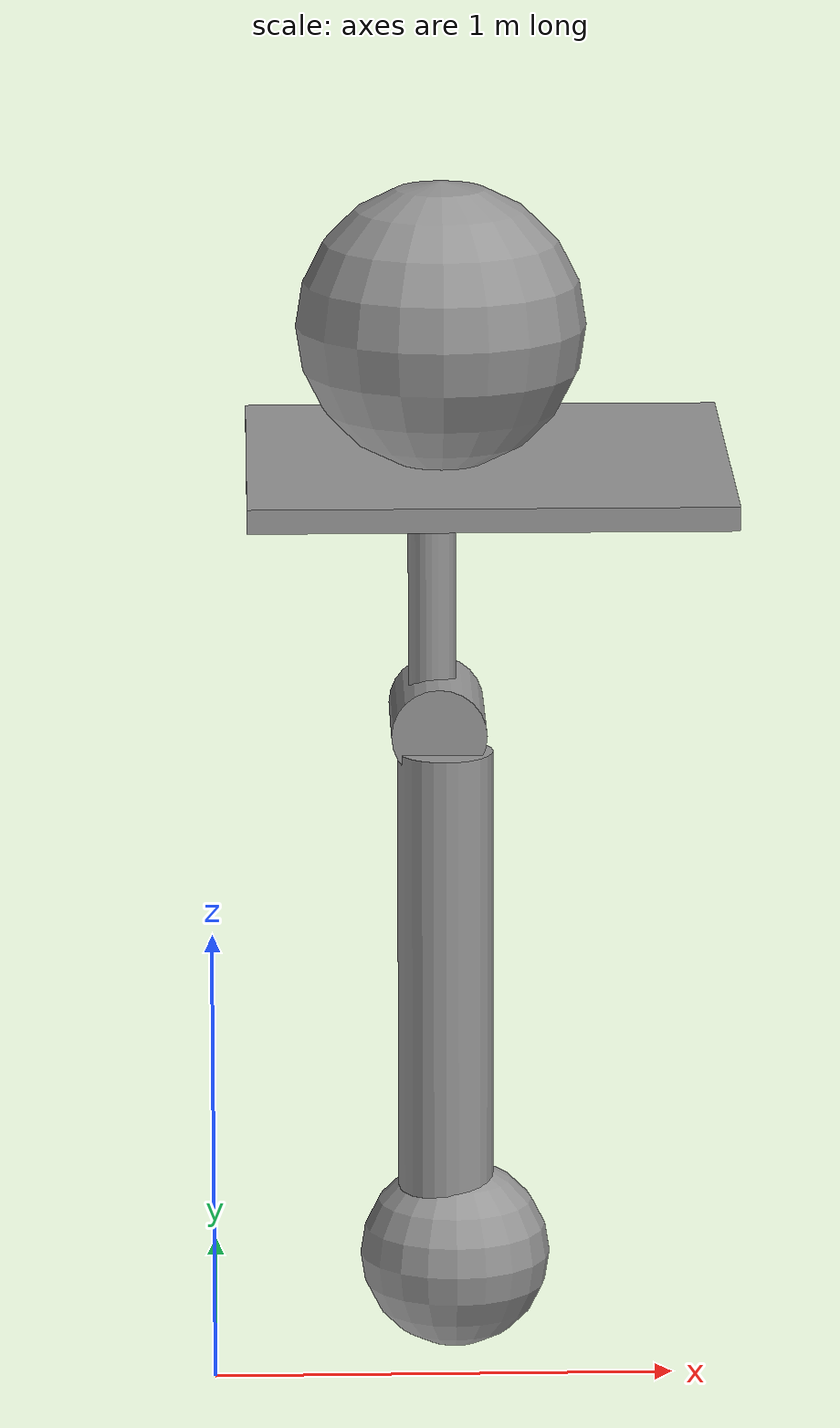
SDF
<?xml version='1.0'?>
<sdf version='1.6'>
  <model name='ralo'>
    <link name='link_1'>
      <pose frame=''>0.490479 -0.550262 1.05 0 -0 0</pose>
      <inertial>
        <mass>1</mass>
        <inertia>
          <ixx>0.145833</ixx>
          <ixy>0</ixy>
          <ixz>0</ixz>
          <iyy>0.145833</iyy>
          <iyz>0</iyz>
          <izz>0.125</izz>
        </inertia>
        <pose frame=''>0 0 0 0 -0 0</pose>
      </inertial>
      <gravity>1</gravity>
      <self_collide>0</self_collide>
      <kinematic>0</kinematic>
      <visual name='visual'>
        <pose frame=''>0 0 0 0 -0 0</pose>
        <geometry>
          <cylinder>
            <radius>0.1</radius>
            <length>1</length>
          </cylinder>
        </geometry>
        <material>
          <lighting>1</lighting>
          <script>
            <uri>file://media/materials/scripts/gazebo.material</uri>
            <name>Gazebo/Grey</name>
          </script>
          <ambient>0.3 0.3 0.3 1</ambient>
          <diffuse>0.7 0.7 0.7 1</diffuse>
          <specular>0.01 0.01 0.01 1</specular>
          <emissive>0 0 0 1</emissive>
          <shader type='vertex'>
            <normal_map>__default__</normal_map>
          </shader>
        </material>
        <transparency>0</transparency>
        <cast_shadows>1</cast_shadows>
      </visual>
      <collision name='collision'>
        <laser_retro>0</laser_retro>
        <max_contacts>10</max_contacts>
        <pose frame=''>0 0 0 0 -0 0</pose>
        <geometry>
          <cylinder>
            <radius>0.1</radius>
            <length>1</length>
          </cylinder>
        </geometry>
        <surface>
          <friction>
            <ode>
              <mu>1</mu>
              <mu2>1</mu2>
              <fdir1>0 0 0</fdir1>
              <slip1>0</slip1>
              <slip2>0</slip2>
            </ode>
            <torsional>
              <coefficient>1</coefficient>
              <patch_radius>0</patch_radius>
              <surface_radius>0</surface_radius>
              <use_patch_radius>1</use_patch_radius>
              <ode>
                <slip>0</slip>
              </ode>
            </torsional>
          </friction>
          <bounce>
            <restitution_coefficient>0</restitution_coefficient>
            <threshold>1e+06</threshold>
          </bounce>
          <contact>
            <collide_without_contact>0</collide_without_contact>
            <collide_without_contact_bitmask>1</collide_without_contact_bitmask>
            <collide_bitmask>1</collide_bitmask>
            <ode>
              <soft_cfm>0</soft_cfm>
              <soft_erp>0.2</soft_erp>
              <kp>1e+13</kp>
              <kd>1</kd>
              <max_vel>0.01</max_vel>
              <min_depth>0</min_depth>
            </ode>
            <bullet>
              <split_impulse>1</split_impulse>
              <split_impulse_penetration_threshold>-0.01</split_impulse_penetration_threshold>
              <soft_cfm>0</soft_cfm>
              <soft_erp>0.2</soft_erp>
              <kp>1e+13</kp>
              <kd>1</kd>
            </bullet>
          </contact>
        </surface>
      </collision>
    </link>
    <link name='link_1_clone'>
      <pose frame=''>0.465476 -0.443144 1.90809 0 -0 0</pose>
      <inertial>
        <mass>1</mass>
        <inertia>
          <ixx>0.145833</ixx>
          <ixy>0</ixy>
          <ixz>0</ixz>
          <iyy>0.145833</iyy>
          <iyz>0</iyz>
          <izz>0.125</izz>
        </inertia>
        <pose frame=''>0 0 0 0 -0 0</pose>
      </inertial>
      <self_collide>0</self_collide>
      <kinematic>0</kinematic>
      <gravity>1</gravity>
      <visual name='visual'>
        <pose frame=''>0 0 0 0 -0 0</pose>
        <geometry>
          <cylinder>
            <radius>0.05</radius>
            <length>0.5</length>
          </cylinder>
        </geometry>
        <material>
          <lighting>1</lighting>
          <script>
            <uri>file://media/materials/scripts/gazebo.material</uri>
            <name>Gazebo/Grey</name>
          </script>
          <ambient>0.3 0.3 0.3 1</ambient>
          <diffuse>0.7 0.7 0.7 1</diffuse>
          <specular>0.01 0.01 0.01 1</specular>
          <emissive>0 0 0 1</emissive>
          <shader type='vertex'>
            <normal_map>__default__</normal_map>
          </shader>
        </material>
        <transparency>0</transparency>
        <cast_shadows>1</cast_shadows>
      </visual>
      <collision name='collision'>
        <laser_retro>0</laser_retro>
        <max_contacts>10</max_contacts>
        <pose frame=''>0 0 0 0 -0 0</pose>
        <geometry>
          <cylinder>
            <radius>0.05</radius>
            <length>0.5</length>
          </cylinder>
        </geometry>
        <surface>
          <friction>
            <ode>
              <mu>1</mu>
              <mu2>1</mu2>
              <fdir1>0 0 0</fdir1>
              <slip1>0</slip1>
              <slip2>0</slip2>
            </ode>
            <torsional>
              <coefficient>1</coefficient>
              <patch_radius>0</patch_radius>
              <surface_radius>0</surface_radius>
              <use_patch_radius>1</use_patch_radius>
              <ode>
                <slip>0</slip>
              </ode>
            </torsional>
          </friction>
          <bounce>
            <restitution_coefficient>0</restitution_coefficient>
            <threshold>1e+06</threshold>
          </bounce>
          <contact>
            <collide_without_contact>0</collide_without_contact>
            <collide_without_contact_bitmask>1</collide_without_contact_bitmask>
            <collide_bitmask>1</collide_bitmask>
            <ode>
              <soft_cfm>0</soft_cfm>
              <soft_erp>0.2</soft_erp>
              <kp>1e+13</kp>
              <kd>1</kd>
              <max_vel>0.01</max_vel>
              <min_depth>0</min_depth>
            </ode>
            <bullet>
              <split_impulse>1</split_impulse>
              <split_impulse_penetration_threshold>-0.01</split_impulse_penetration_threshold>
              <soft_cfm>0</soft_cfm>
              <soft_erp>0.2</soft_erp>
              <kp>1e+13</kp>
              <kd>1</kd>
            </bullet>
          </contact>
        </surface>
      </collision>
    </link>
    <link name='link_2'>
      <pose frame=''>0.477359 -0.438046 1.58978 -1.5708 0 0</pose>
      <inertial>
        <mass>1</mass>
        <inertia>
          <ixx>0.145833</ixx>
          <ixy>0</ixy>
          <ixz>0</ixz>
          <iyy>0.145833</iyy>
          <iyz>0</iyz>
          <izz>0.125</izz>
        </inertia>
        <pose frame=''>0 0 0 0 -0 0</pose>
      </inertial>
      <gravity>1</gravity>
      <self_collide>0</self_collide>
      <kinematic>0</kinematic>
      <visual name='visual'>
        <pose frame=''>0 0 0 0 -0 0</pose>
        <geometry>
          <cylinder>
            <radius>0.1</radius>
            <length>0.3</length>
          </cylinder>
        </geometry>
        <material>
          <lighting>1</lighting>
          <script>
            <uri>file://media/materials/scripts/gazebo.material</uri>
            <name>Gazebo/Grey</name>
          </script>
          <ambient>0.3 0.3 0.3 1</ambient>
          <diffuse>0.7 0.7 0.7 1</diffuse>
          <specular>0.01 0.01 0.01 1</specular>
          <emissive>0 0 0 1</emissive>
          <shader type='vertex'>
            <normal_map>__default__</normal_map>
          </shader>
        </material>
        <transparency>0</transparency>
        <cast_shadows>1</cast_shadows>
      </visual>
      <collision name='collision'>
        <laser_retro>0</laser_retro>
        <max_contacts>10</max_contacts>
        <pose frame=''>0 0 0 0 -0 0</pose>
        <geometry>
          <cylinder>
            <radius>0.1</radius>
            <length>0.3</length>
          </cylinder>
        </geometry>
        <surface>
          <friction>
            <ode>
              <mu>1</mu>
              <mu2>1</mu2>
              <fdir1>0 0 0</fdir1>
              <slip1>0</slip1>
              <slip2>0</slip2>
            </ode>
            <torsional>
              <coefficient>1</coefficient>
              <patch_radius>0</patch_radius>
              <surface_radius>0</surface_radius>
              <use_patch_radius>1</use_patch_radius>
              <ode>
                <slip>0</slip>
              </ode>
            </torsional>
          </friction>
          <bounce>
            <restitution_coefficient>0</restitution_coefficient>
            <threshold>1e+06</threshold>
          </bounce>
          <contact>
            <collide_without_contact>0</collide_without_contact>
            <collide_without_contact_bitmask>1</collide_without_contact_bitmask>
            <collide_bitmask>1</collide_bitmask>
            <ode>
              <soft_cfm>0</soft_cfm>
              <soft_erp>0.2</soft_erp>
              <kp>1e+13</kp>
              <kd>1</kd>
              <max_vel>0.01</max_vel>
              <min_depth>0</min_depth>
            </ode>
            <bullet>
              <split_impulse>1</split_impulse>
              <split_impulse_penetration_threshold>-0.01</split_impulse_penetration_threshold>
              <soft_cfm>0</soft_cfm>
              <soft_erp>0.2</soft_erp>
              <kp>1e+13</kp>
              <kd>1</kd>
            </bullet>
          </contact>
        </surface>
      </collision>
    </link>
    <link name='link_3'>
      <pose frame=''>0.510479 -0.530262 0.449785 0 -0 0</pose>
      <inertial>
        <mass>1</mass>
        <inertia>
          <ixx>0.1</ixx>
          <ixy>0</ixy>
          <ixz>0</ixz>
          <iyy>0.1</iyy>
          <iyz>0</iyz>
          <izz>0.1</izz>
        </inertia>
        <pose frame=''>0 0 0 0 -0 0</pose>
      </inertial>
      <gravity>1</gravity>
      <self_collide>0</self_collide>
      <kinematic>0</kinematic>
      <visual name='visual'>
        <pose frame=''>0 0 0 0 -0 0</pose>
        <geometry>
          <sphere>
            <radius>0.2</radius>
          </sphere>
        </geometry>
        <material>
          <lighting>1</lighting>
          <script>
            <uri>file://media/materials/scripts/gazebo.material</uri>
            <name>Gazebo/Grey</name>
          </script>
          <ambient>0.3 0.3 0.3 1</ambient>
          <diffuse>0.7 0.7 0.7 1</diffuse>
          <specular>0.01 0.01 0.01 1</specular>
          <emissive>0 0 0 1</emissive>
          <shader type='vertex'>
            <normal_map>__default__</normal_map>
          </shader>
        </material>
        <transparency>0</transparency>
        <cast_shadows>1</cast_shadows>
      </visual>
      <collision name='collision'>
        <laser_retro>0</laser_retro>
        <max_contacts>10</max_contacts>
        <pose frame=''>0 0 0 0 -0 0</pose>
        <geometry>
          <sphere>
            <radius>0.2</radius>
          </sphere>
        </geometry>
        <surface>
          <friction>
            <ode>
              <mu>1</mu>
              <mu2>1</mu2>
              <fdir1>0 0 0</fdir1>
              <slip1>0</slip1>
              <slip2>0</slip2>
            </ode>
            <torsional>
              <coefficient>1</coefficient>
              <patch_radius>0</patch_radius>
              <surface_radius>0</surface_radius>
              <use_patch_radius>1</use_patch_radius>
              <ode>
                <slip>0</slip>
              </ode>
            </torsional>
          </friction>
          <bounce>
            <restitution_coefficient>0</restitution_coefficient>
            <threshold>1e+06</threshold>
          </bounce>
          <contact>
            <collide_without_contact>0</collide_without_contact>
            <collide_without_contact_bitmask>1</collide_without_contact_bitmask>
            <collide_bitmask>1</collide_bitmask>
            <ode>
              <soft_cfm>0</soft_cfm>
              <soft_erp>0.2</soft_erp>
              <kp>1e+13</kp>
              <kd>1</kd>
              <max_vel>0.01</max_vel>
              <min_depth>0</min_depth>
            </ode>
            <bullet>
              <split_impulse>1</split_impulse>
              <split_impulse_penetration_threshold>-0.01</split_impulse_penetration_threshold>
              <soft_cfm>0</soft_cfm>
              <soft_erp>0.2</soft_erp>
              <kp>1e+13</kp>
              <kd>1</kd>
            </bullet>
          </contact>
        </surface>
      </collision>
    </link>
    <link name='link_4'>
      <pose frame=''>0.578756 -0.499284 2.14602 0 -0 0</pose>
      <inertial>
        <mass>1</mass>
        <inertia>
          <ixx>0.166667</ixx>
          <ixy>0</ixy>
          <ixz>0</ixz>
          <iyy>0.166667</iyy>
          <iyz>0</iyz>
          <izz>0.166667</izz>
        </inertia>
        <pose frame=''>0 0 0 0 -0 0</pose>
      </inertial>
      <gravity>1</gravity>
      <self_collide>0</self_collide>
      <kinematic>0</kinematic>
      <visual name='visual'>
        <pose frame=''>0 0 0 0 -0 0</pose>
        <geometry>
          <box>
            <size>1 1 0.05</size>
          </box>
        </geometry>
        <material>
          <lighting>1</lighting>
          <script>
            <uri>file://media/materials/scripts/gazebo.material</uri>
            <name>Gazebo/Grey</name>
          </script>
          <ambient>0.3 0.3 0.3 1</ambient>
          <diffuse>0.7 0.7 0.7 1</diffuse>
          <specular>0.01 0.01 0.01 1</specular>
          <emissive>0 0 0 1</emissive>
          <shader type='vertex'>
            <normal_map>__default__</normal_map>
          </shader>
        </material>
        <transparency>0</transparency>
        <cast_shadows>1</cast_shadows>
      </visual>
      <collision name='collision'>
        <laser_retro>0</laser_retro>
        <max_contacts>10</max_contacts>
        <pose frame=''>0 0 0 0 -0 0</pose>
        <geometry>
          <box>
            <size>1 1 0.05</size>
          </box>
        </geometry>
        <surface>
          <friction>
            <ode>
              <mu>1</mu>
              <mu2>1</mu2>
              <fdir1>0 0 0</fdir1>
              <slip1>0</slip1>
              <slip2>0</slip2>
            </ode>
            <torsional>
              <coefficient>1</coefficient>
              <patch_radius>0</patch_radius>
              <surface_radius>0</surface_radius>
              <use_patch_radius>1</use_patch_radius>
              <ode>
                <slip>0</slip>
              </ode>
            </torsional>
          </friction>
          <bounce>
            <restitution_coefficient>0</restitution_coefficient>
            <threshold>1e+06</threshold>
          </bounce>
          <contact>
            <collide_without_contact>0</collide_without_contact>
            <collide_without_contact_bitmask>1</collide_without_contact_bitmask>
            <collide_bitmask>1</collide_bitmask>
            <ode>
              <soft_cfm>0</soft_cfm>
              <soft_erp>0.2</soft_erp>
              <kp>1e+13</kp>
              <kd>1</kd>
              <max_vel>0.01</max_vel>
              <min_depth>0</min_depth>
            </ode>
            <bullet>
              <split_impulse>1</split_impulse>
              <split_impulse_penetration_threshold>-0.01</split_impulse_penetration_threshold>
              <soft_cfm>0</soft_cfm>
              <soft_erp>0.2</soft_erp>
              <kp>1e+13</kp>
              <kd>1</kd>
            </bullet>
          </contact>
        </surface>
      </collision>
    </link>
    <link name='link_5'>
      <pose frame=''>0.481833 -0.560314 2.45911 0 -0 0</pose>
      <inertial>
        <mass>1</mass>
        <inertia>
          <ixx>0.1</ixx>
          <ixy>0</ixy>
          <ixz>0</ixz>
          <iyy>0.1</iyy>
          <iyz>0</iyz>
          <izz>0.1</izz>
        </inertia>
        <pose frame=''>0 0 0 0 -0 0</pose>
      </inertial>
      <gravity>1</gravity>
      <self_collide>0</self_collide>
      <kinematic>0</kinematic>
      <visual name='visual'>
        <pose frame=''>0 0 0 0 -0 0</pose>
        <geometry>
          <sphere>
            <radius>0.3</radius>
          </sphere>
        </geometry>
        <material>
          <lighting>1</lighting>
          <script>
            <uri>file://media/materials/scripts/gazebo.material</uri>
            <name>Gazebo/Grey</name>
          </script>
          <ambient>0.3 0.3 0.3 1</ambient>
          <diffuse>0.7 0.7 0.7 1</diffuse>
          <specular>0.01 0.01 0.01 1</specular>
          <emissive>0 0 0 1</emissive>
          <shader type='vertex'>
            <normal_map>__default__</normal_map>
          </shader>
        </material>
        <transparency>0</transparency>
        <cast_shadows>1</cast_shadows>
      </visual>
      <collision name='collision'>
        <laser_retro>0</laser_retro>
        <max_contacts>10</max_contacts>
        <pose frame=''>0 0 0 0 -0 0</pose>
        <geometry>
          <sphere>
            <radius>0.3</radius>
          </sphere>
        </geometry>
        <surface>
          <friction>
            <ode>
              <mu>1</mu>
              <mu2>1</mu2>
              <fdir1>0 0 0</fdir1>
              <slip1>0</slip1>
              <slip2>0</slip2>
            </ode>
            <torsional>
              <coefficient>1</coefficient>
              <patch_radius>0</patch_radius>
              <surface_radius>0</surface_radius>
              <use_patch_radius>1</use_patch_radius>
              <ode>
                <slip>0</slip>
              </ode>
            </torsional>
          </friction>
          <bounce>
            <restitution_coefficient>0</restitution_coefficient>
            <threshold>1e+06</threshold>
          </bounce>
          <contact>
            <collide_without_contact>0</collide_without_contact>
            <collide_without_contact_bitmask>1</collide_without_contact_bitmask>
            <collide_bitmask>1</collide_bitmask>
            <ode>
              <soft_cfm>0</soft_cfm>
              <soft_erp>0.2</soft_erp>
              <kp>1e+13</kp>
              <kd>1</kd>
              <max_vel>0.01</max_vel>
              <min_depth>0</min_depth>
            </ode>
            <bullet>
              <split_impulse>1</split_impulse>
              <split_impulse_penetration_threshold>-0.01</split_impulse_penetration_threshold>
              <soft_cfm>0</soft_cfm>
              <soft_erp>0.2</soft_erp>
              <kp>1e+13</kp>
              <kd>1</kd>
            </bullet>
          </contact>
        </surface>
      </collision>
    </link>
    <joint name='link_1_JOINT_0' type='revolute'>
      <parent>link_1</parent>
      <child>link_2</child>
      <pose frame=''>0 0 0 0 -0 0</pose>
      <axis>
        <xyz>1 0 0</xyz>
        <use_parent_model_frame>0</use_parent_model_frame>
        <limit>
          <lower>-1.79769e+308</lower>
          <upper>1.79769e+308</upper>
          <effort>-1</effort>
          <velocity>-1</velocity>
        </limit>
        <dynamics>
          <spring_reference>0</spring_reference>
          <spring_stiffness>0</spring_stiffness>
          <damping>0</damping>
          <friction>0</friction>
        </dynamics>
      </axis>
      <physics>
        <ode>
          <limit>
            <cfm>0</cfm>
            <erp>0.2</erp>
          </limit>
          <suspension>
            <cfm>0</cfm>
            <erp>0.2</erp>
          </suspension>
        </ode>
      </physics>
    </joint>
    <joint name='link_1_JOINT_2' type='ball'>
      <parent>link_1</parent>
      <child>link_3</child>
      <pose frame=''>0 0 0 0 -0 0</pose>
      <physics>
        <ode>
          <limit>
            <cfm>0</cfm>
            <erp>0.2</erp>
          </limit>
          <suspension>
            <cfm>0</cfm>
            <erp>0.2</erp>
          </suspension>
        </ode>
      </physics>
    </joint>
    <joint name='link_1_clone_JOINT_3' type='fixed'>
      <parent>link_1_clone</parent>
      <child>link_4</child>
      <pose frame=''>0 0 0 0 -0 0</pose>
      <physics>
        <ode>
          <limit>
            <cfm>0</cfm>
            <erp>0.2</erp>
          </limit>
          <suspension>
            <cfm>0</cfm>
            <erp>0.2</erp>
          </suspension>
        </ode>
      </physics>
    </joint>
    <joint name='link_1_clone_JOINT_4' type='fixed'>
      <parent>link_1_clone</parent>
      <child>link_5</child>
      <pose frame=''>0 0 0 0 -0 0</pose>
      <physics>
        <ode>
          <limit>
            <cfm>0</cfm>
            <erp>0.2</erp>
          </limit>
          <suspension>
            <cfm>0</cfm>
            <erp>0.2</erp>
          </suspension>
        </ode>
      </physics>
    </joint>
    <joint name='link_2_JOINT_1' type='revolute'>
      <parent>link_2</parent>
      <child>link_1_clone</child>
      <pose frame=''>0 0 0 0 -0 0</pose>
      <axis>
        <xyz>1 0 0</xyz>
        <use_parent_model_frame>0</use_parent_model_frame>
        <limit>
          <lower>-1.79769e+308</lower>
          <upper>1.79769e+308</upper>
          <effort>-1</effort>
          <velocity>-1</velocity>
        </limit>
        <dynamics>
          <spring_reference>0</spring_reference>
          <spring_stiffness>0</spring_stiffness>
          <damping>0</damping>
        </dynamics>
      </axis>
      <physics>
        <ode>
          <limit>
            <cfm>0</cfm>
            <erp>0.2</erp>
          </limit>
          <suspension>
            <cfm>0</cfm>
            <erp>0.2</erp>
          </suspension>
        </ode>
      </physics>
    </joint>
    <static>0</static>
    <allow_auto_disable>1</allow_auto_disable>
  </model>
</sdf>
